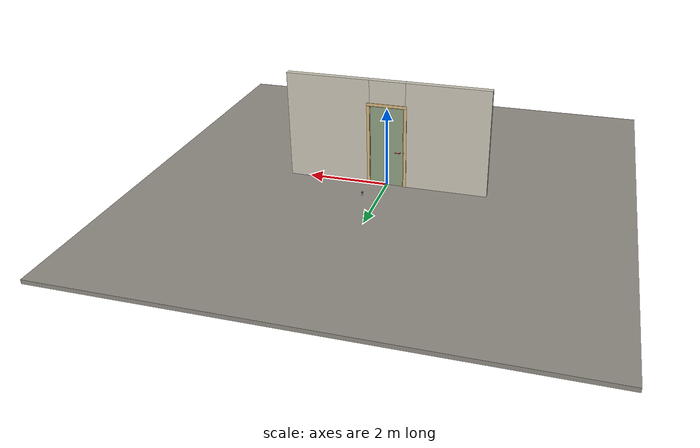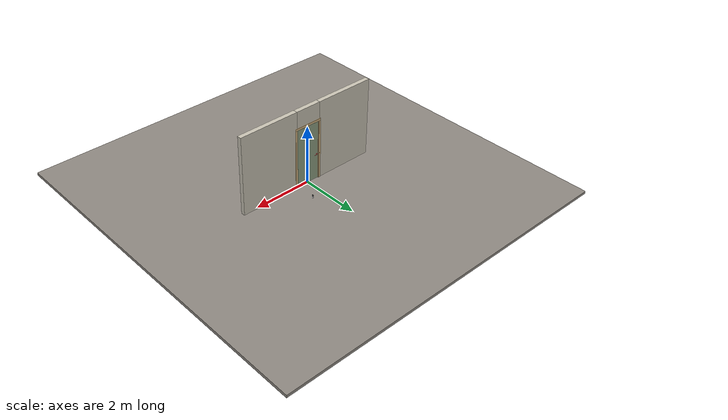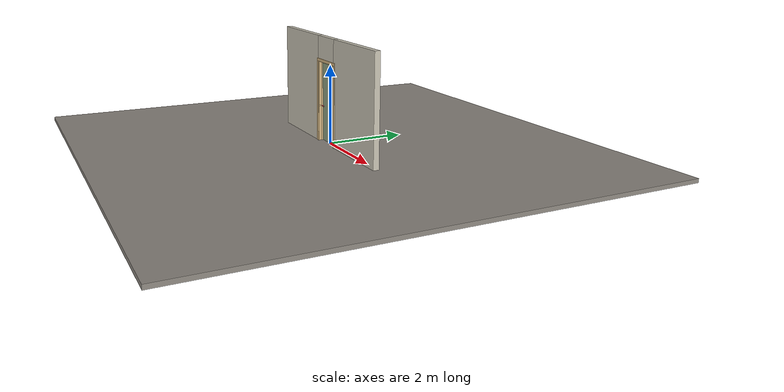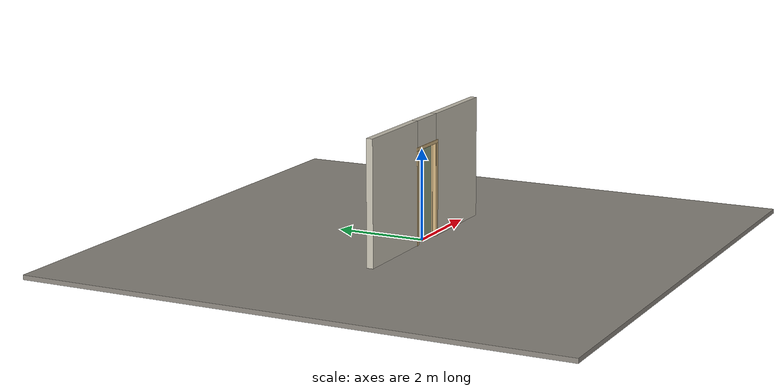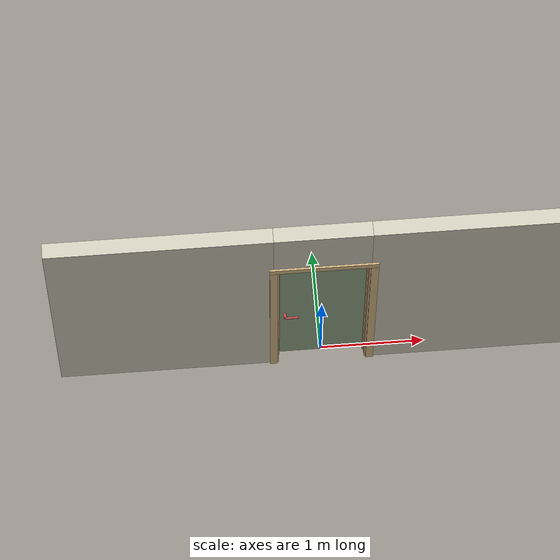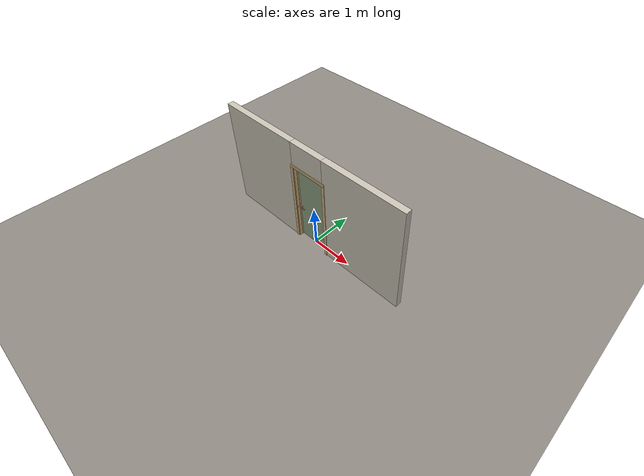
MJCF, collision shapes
<?xml version="1.0" ?>
<mujoco model="db0668_swing_single_full">
  <compiler angle="radian" meshdir="../../hardware" texturedir="../../textures" autolimits="true" inertiafromgeom="false"/>
  <option timestep="0.002" integrator="implicitfast" cone="elliptic" impratio="10" noslip_iterations="3">
    <flag multiccd="enable"/>
  </option>
  <size memory="16M"/>
  <default>
    <geom condim="4" solref="0.005 1" solimp="0.95 0.99 0.001"/>
    <joint solreflimit="0.005 1" solimplimit="0.95 0.99 0.001"/>
    <tendon solreflimit="0.005 1"/>
    <equality solref="0.002 1"/>
  </default>
  <visual>
    <headlight ambient="0.4 0.4 0.4" diffuse="0.7 0.7 0.7" specular="0.2 0.2 0.2"/>
    <quality shadowsize="4096"/>
    <map znear="0.01" zfar="60"/>
  </visual>
  <asset>
    <mesh name="hinge_96510cf394" file="hinge_96510cf394.obj"/>
    <mesh name="hinge_jamb_7fd4ca52b2" file="hinge_jamb_7fd4ca52b2.obj"/>
    <mesh name="lever_9f02b544cf" file="lever_9f02b544cf.obj"/>
    <material name="mat_floor" rgba="0.55 0.53 0.5 1" specular="0.2" shininess="0.15" reflectance="0"/>
    <material name="mat_wall" rgba="0.78 0.76 0.7 1" specular="0.2" shininess="0.1" reflectance="0"/>
    <material name="mat_leaf" rgba="0.55 0.62 0.5 1" specular="0.2" shininess="0.51" reflectance="0"/>
    <material name="mat_leaf_louver" rgba="0.468 0.527 0.425 1" specular="0.2" shininess="0.4" reflectance="0"/>
    <material name="mat_hinge" rgba="0.65 0.66 0.68 1" specular="0.74" shininess="0.5" reflectance="0.36"/>
    <material name="mat_op_nickel_satin" rgba="0.72 0.7 0.66 1" specular="0.8" shininess="0.65" reflectance="0.4"/>
    <material name="mat_trim" rgba="0.85 0.66 0.3 1" specular="0.8" shininess="0.75" reflectance="0.4"/>
    <material name="mat_bolt" rgba="0.85 0.66 0.3 1" specular="0.8" shininess="0.75" reflectance="0.4"/>
    <material name="mat_frame" rgba="0.82 0.7 0.5 1" specular="0.2" shininess="0.45" reflectance="0"/>
    <material name="mat_seal" rgba="0.1 0.1 0.1 1" specular="0.2" shininess="0.1" reflectance="0"/>
    <material name="mat_bumper_stop" rgba="0.08 0.08 0.08 1" specular="0.2" shininess="0.1" reflectance="0"/>
    <material name="mat_stop_base" rgba="0.9 0.9 0.92 1" specular="0.8" shininess="0.9" reflectance="0.4"/>
    <texture name="skybox" type="skybox" builtin="gradient" rgb1="0.6 0.7 0.85" rgb2="0.9 0.92 0.95" width="256" height="256"/>
  </asset>
  <worldbody>
    <light name="sun" pos="1.5 -2.5 4" dir="-0.3 0.5 -0.8" directional="true" diffuse="0.8 0.8 0.8" specular="0.3 0.3 0.3" castshadow="true"/>
    <light name="fill" pos="-1.5 2.5 3" dir="0.3 -0.5 -0.7" directional="true" diffuse="0.35 0.35 0.4" castshadow="false"/>
    <camera name="robot_view" pos="0 -2.590187 1.734312" xyaxes="1 0 0 0 0.26963 0.962964" fovy="52"/>
    <camera name="far_view" pos="0 2.494187 1.734312" xyaxes="-1 0 0 0 -0.26963 0.962964" fovy="52"/>
    <camera name="iso" pos="-1.932062 -2.183438 2.141063" xyaxes="0.741536 -0.670913 0 0.242917 0.268487 0.932151" fovy="46"/>
    <camera name="detail_handle" pos="-0.066 -0.8725 1.194" xyaxes="0.97561 0.219512 0 -0.070934 0.315262 0.94635" fovy="38"/>
    <geom name="floor" type="box" size="6 6 0.05" pos="0 0 -0.05" material="mat_floor" group="0" contype="1" conaffinity="1" friction="0.8 0.005 0.0001" density="2400"/>
    <geom name="wall_left" type="box" size="1.0205 0.0725 1.35" pos="-1.4795 -0.048 1.35" material="mat_wall" group="0" contype="1" conaffinity="1" friction="0.6 0.005 0.0001" density="800"/>
    <geom name="wall_right" type="box" size="1.0355 0.0725 1.35" pos="1.4645 -0.048 1.35" material="mat_wall" group="0" contype="1" conaffinity="1" friction="0.6 0.005 0.0001" density="800"/>
    <geom name="wall_header" type="box" size="0.444 0.0725 0.303" pos="-0.015 -0.048 2.397" material="mat_wall" group="0" contype="1" conaffinity="1" friction="0.6 0.005 0.0001" density="800"/>
    <geom name="hinge_0_jamb" type="mesh" mesh="hinge_jamb_7fd4ca52b2" pos="0.407 0.0245 0.259" quat="0 0 0 1" material="mat_hinge" group="1" contype="0" conaffinity="0" density="7850"/>
    <geom name="hinge_1_jamb" type="mesh" mesh="hinge_jamb_7fd4ca52b2" pos="0.407 0.0245 1.025" quat="0 0 0 1" material="mat_hinge" group="1" contype="0" conaffinity="0" density="7850"/>
    <geom name="hinge_2_jamb" type="mesh" mesh="hinge_jamb_7fd4ca52b2" pos="0.407 0.0245 1.861" quat="0 0 0 1" material="mat_hinge" group="1" contype="0" conaffinity="0" density="7850"/>
    <geom name="jamb_hinge" type="box" size="0.0095 0.0725 1.0225" pos="0.4195 -0.048 1.0225" material="mat_frame" group="0" contype="1" conaffinity="1" friction="0.6 0.005 0.0001" density="400"/>
    <geom name="strike_914_wall_n" type="box" size="0.0245 0.056325 0.0167" pos="-0.4345 -0.064175 0.914" material="mat_frame" group="0" contype="1" conaffinity="1" friction="0.6 0.005 0.0001" density="400"/>
    <geom name="strike_914_wall_p" type="box" size="0.0245 0.008 0.0167" pos="-0.4345 0.01585 0.914" material="mat_frame" group="0" contype="1" conaffinity="1" friction="0.6 0.005 0.0001" density="400"/>
    <geom name="strike_914_ramp" type="box" size="0.0245 0.01649 0.0167" pos="-0.439136 0.028673 0.914" quat="0.977148 0 0 0.212558" material="mat_frame" group="0" contype="1" conaffinity="1" friction="0.12 0.005 0.0001" density="400"/>
    <geom name="strike_914_back" type="box" size="0.01615 0.00785 0.0167" pos="-0.44285 0 0.914" material="mat_frame" group="0" contype="1" conaffinity="1" friction="0.6 0.005 0.0001" density="400"/>
    <geom name="jamb_strike_0" type="box" size="0.0245 0.0725 0.44865" pos="-0.4345 -0.048 0.44865" material="mat_frame" group="0" contype="1" conaffinity="1" friction="0.6 0.005 0.0001" density="400"/>
    <geom name="jamb_strike_1" type="box" size="0.0245 0.0725 0.55715" pos="-0.4345 -0.048 1.48785" material="mat_frame" group="0" contype="1" conaffinity="1" friction="0.6 0.005 0.0001" density="400"/>
    <geom name="jamb_head" type="box" size="0.444 0.0725 0.0095" pos="-0.015 -0.048 2.0545" material="mat_frame" group="0" contype="1" conaffinity="1" friction="0.6 0.005 0.0001" density="400"/>
    <geom name="head_stud" type="box" size="0.444 0.0725 0.015" pos="-0.015 -0.048 2.079" material="mat_wall" group="0" contype="1" conaffinity="1" friction="0.6 0.005 0.0001" density="500"/>
    <geom name="stop_hinge" type="box" size="0.0055 0.016 1.0225" pos="0.4045 -0.034 1.0225" material="mat_frame" group="0" contype="1" conaffinity="1" friction="0.6 0.005 0.0001" density="400"/>
    <geom name="stop_strike" type="box" size="0.0055 0.016 1.0225" pos="-0.4045 -0.034 1.0225" material="mat_frame" group="0" contype="1" conaffinity="1" friction="0.6 0.005 0.0001" density="400"/>
    <geom name="stop_head" type="box" size="0.41 0.016 0.0055" pos="0 -0.034 2.0395" material="mat_frame" group="0" contype="1" conaffinity="1" friction="0.6 0.005 0.0001" density="400"/>
    <geom name="seal_hinge" type="box" size="0.004 0.002 1.0225" pos="0.407 -0.0195 1.0225" material="mat_seal" group="1" contype="0" conaffinity="0" density="1100"/>
    <geom name="seal_strike" type="box" size="0.004 0.002 1.0225" pos="-0.407 -0.0195 1.0225" material="mat_seal" group="1" contype="0" conaffinity="0" density="1100"/>
    <geom name="seal_head" type="box" size="0.39 0.002 0.008" pos="0 -0.0195 2.033" material="mat_seal" group="1" contype="0" conaffinity="0" density="1100"/>
    <geom name="casing_l_n" type="box" size="0.035 0.008 1.032" pos="-0.459 -0.1285 1.0225" material="mat_frame" group="2" contype="0" conaffinity="0" density="400"/>
    <geom name="casing_r_n" type="box" size="0.035 0.008 1.032" pos="0.459 -0.1285 1.0225" material="mat_frame" group="2" contype="0" conaffinity="0" density="400"/>
    <geom name="casing_h_n" type="box" size="0.494 0.008 0.035" pos="0 -0.1285 2.094" material="mat_frame" group="2" contype="0" conaffinity="0" density="400"/>
    <geom name="casing_l_p" type="box" size="0.035 0.008 1.032" pos="-0.459 0.0325 1.0225" material="mat_frame" group="2" contype="0" conaffinity="0" density="400"/>
    <geom name="casing_r_p" type="box" size="0.035 0.008 1.032" pos="0.459 0.0325 1.0225" material="mat_frame" group="2" contype="0" conaffinity="0" density="400"/>
    <geom name="casing_h_p" type="box" size="0.494 0.008 0.035" pos="0 0.0325 2.094" material="mat_frame" group="2" contype="0" conaffinity="0" density="400"/>
    <geom name="door_stop_base" type="cylinder" size="0.022 0.003" pos="0.423 0.71555 0.003" material="mat_stop_base" group="0" contype="1" conaffinity="1" friction="0.6 0.005 0.0001" density="7850"/>
    <geom name="door_stop_post" type="cylinder" size="0.012 0.0245" pos="0.423 0.71555 0.0305" material="mat_stop_base" group="0" contype="1" conaffinity="1" friction="0.6 0.005 0.0001" density="7850"/>
    <geom name="door_stop_bumper" type="cylinder" size="0.022 0.02" pos="0.423 0.71555 0.075" material="mat_bumper_stop" group="0" contype="1" conaffinity="1" friction="0.6 0.005 0.0001" density="1100"/>
    <site name="approach_point" pos="0 -1.5 0" quat="1 0 0 0" size="0.05" rgba="0.2 0.9 0.2 0.5" group="4"/>
    <site name="goal_point" pos="0 1.5 0" quat="1 0 0 0" size="0.05" rgba="0.2 0.9 0.2 0.5" group="4"/>
    <site name="door_plane_center" pos="0 0 1.0225" quat="1 0 0 0" size="0.02" rgba="0.2 0.9 0.2 0.5" group="4"/>
    <body name="leaf" pos="0.41 0 0">
      <inertial pos="-0.405307 0.000156 1.025217" mass="38.890394" quat="0.499823 0.500377 -0.499617 0.500182" diaginertia="2.19273566 13.415975182 15.600549887"/>
      <joint name="leaf_hinge" type="hinge" axis="0 0 -1" pos="-0.003 0.0245 0" limited="true" range="0 1.570796" solreflimit="0.02 1" damping="0.210326" frictionloss="2.430777" armature="0.02"/>
      <geom name="leaf_slab" type="box" size="0.4065 0.0175 1.016" pos="-0.4095 0 1.025" material="mat_leaf" group="0" contype="1" conaffinity="1" friction="0.4 0.005 0.0001" density="1"/>
      <geom name="leaf_louver_0" type="box" size="0.3165 0.002 0.026356" pos="-0.4095 0 0.257621" quat="0.953717 0.300706 0 0" material="mat_leaf_louver" group="1" contype="0" conaffinity="0" density="1"/>
      <geom name="leaf_louver_1" type="box" size="0.3165 0.002 0.026356" pos="-0.4095 0 0.307824" quat="0.953717 0.300706 0 0" material="mat_leaf_louver" group="1" contype="0" conaffinity="0" density="1"/>
      <geom name="leaf_louver_2" type="box" size="0.3165 0.002 0.026356" pos="-0.4095 0 0.358026" quat="0.953717 0.300706 0 0" material="mat_leaf_louver" group="1" contype="0" conaffinity="0" density="1"/>
      <geom name="leaf_louver_3" type="box" size="0.3165 0.002 0.026356" pos="-0.4095 0 0.408228" quat="0.953717 0.300706 0 0" material="mat_leaf_louver" group="1" contype="0" conaffinity="0" density="1"/>
      <geom name="leaf_louver_4" type="box" size="0.3165 0.002 0.026356" pos="-0.4095 0 0.458431" quat="0.953717 0.300706 0 0" material="mat_leaf_louver" group="1" contype="0" conaffinity="0" density="1"/>
      <geom name="leaf_louver_5" type="box" size="0.3165 0.002 0.026356" pos="-0.4095 0 0.508633" quat="0.953717 0.300706 0 0" material="mat_leaf_louver" group="1" contype="0" conaffinity="0" density="1"/>
      <geom name="leaf_louver_6" type="box" size="0.3165 0.002 0.026356" pos="-0.4095 0 0.558835" quat="0.953717 0.300706 0 0" material="mat_leaf_louver" group="1" contype="0" conaffinity="0" density="1"/>
      <geom name="leaf_louver_7" type="box" size="0.3165 0.002 0.026356" pos="-0.4095 0 0.609038" quat="0.953717 0.300706 0 0" material="mat_leaf_louver" group="1" contype="0" conaffinity="0" density="1"/>
      <geom name="leaf_louver_8" type="box" size="0.3165 0.002 0.026356" pos="-0.4095 0 0.65924" quat="0.953717 0.300706 0 0" material="mat_leaf_louver" group="1" contype="0" conaffinity="0" density="1"/>
      <geom name="leaf_louver_9" type="box" size="0.3165 0.002 0.026356" pos="-0.4095 0 0.709442" quat="0.953717 0.300706 0 0" material="mat_leaf_louver" group="1" contype="0" conaffinity="0" density="1"/>
      <geom name="leaf_louver_10" type="box" size="0.3165 0.002 0.026356" pos="-0.4095 0 0.759645" quat="0.953717 0.300706 0 0" material="mat_leaf_louver" group="1" contype="0" conaffinity="0" density="1"/>
      <geom name="leaf_louver_11" type="box" size="0.3165 0.002 0.026356" pos="-0.4095 0 0.809847" quat="0.953717 0.300706 0 0" material="mat_leaf_louver" group="1" contype="0" conaffinity="0" density="1"/>
      <geom name="leaf_louver_12" type="box" size="0.3165 0.002 0.026356" pos="-0.4095 0 0.860049" quat="0.953717 0.300706 0 0" material="mat_leaf_louver" group="1" contype="0" conaffinity="0" density="1"/>
      <geom name="leaf_louver_13" type="box" size="0.3165 0.002 0.026356" pos="-0.4095 0 0.910252" quat="0.953717 0.300706 0 0" material="mat_leaf_louver" group="1" contype="0" conaffinity="0" density="1"/>
      <geom name="leaf_louver_14" type="box" size="0.3165 0.002 0.026356" pos="-0.4095 0 0.960454" quat="0.953717 0.300706 0 0" material="mat_leaf_louver" group="1" contype="0" conaffinity="0" density="1"/>
      <geom name="leaf_louver_15" type="box" size="0.3165 0.002 0.026356" pos="-0.4095 0 1.010656" quat="0.953717 0.300706 0 0" material="mat_leaf_louver" group="1" contype="0" conaffinity="0" density="1"/>
      <geom name="leaf_louver_16" type="box" size="0.3165 0.002 0.026356" pos="-0.4095 0 1.060859" quat="0.953717 0.300706 0 0" material="mat_leaf_louver" group="1" contype="0" conaffinity="0" density="1"/>
      <geom name="leaf_louver_17" type="box" size="0.3165 0.002 0.026356" pos="-0.4095 0 1.111061" quat="0.953717 0.300706 0 0" material="mat_leaf_louver" group="1" contype="0" conaffinity="0" density="1"/>
      <geom name="leaf_louver_18" type="box" size="0.3165 0.002 0.026356" pos="-0.4095 0 1.161264" quat="0.953717 0.300706 0 0" material="mat_leaf_louver" group="1" contype="0" conaffinity="0" density="1"/>
      <geom name="leaf_louver_19" type="box" size="0.3165 0.002 0.026356" pos="-0.4095 0 1.211466" quat="0.953717 0.300706 0 0" material="mat_leaf_louver" group="1" contype="0" conaffinity="0" density="1"/>
      <geom name="leaf_louver_20" type="box" size="0.3165 0.002 0.026356" pos="-0.4095 0 1.261668" quat="0.953717 0.300706 0 0" material="mat_leaf_louver" group="1" contype="0" conaffinity="0" density="1"/>
      <geom name="leaf_louver_21" type="box" size="0.3165 0.002 0.026356" pos="-0.4095 0 1.311871" quat="0.953717 0.300706 0 0" material="mat_leaf_louver" group="1" contype="0" conaffinity="0" density="1"/>
      <geom name="leaf_louver_22" type="box" size="0.3165 0.002 0.026356" pos="-0.4095 0 1.362073" quat="0.953717 0.300706 0 0" material="mat_leaf_louver" group="1" contype="0" conaffinity="0" density="1"/>
      <geom name="leaf_louver_23" type="box" size="0.3165 0.002 0.026356" pos="-0.4095 0 1.412275" quat="0.953717 0.300706 0 0" material="mat_leaf_louver" group="1" contype="0" conaffinity="0" density="1"/>
      <geom name="leaf_louver_24" type="box" size="0.3165 0.002 0.026356" pos="-0.4095 0 1.462478" quat="0.953717 0.300706 0 0" material="mat_leaf_louver" group="1" contype="0" conaffinity="0" density="1"/>
      <geom name="leaf_louver_25" type="box" size="0.3165 0.002 0.026356" pos="-0.4095 0 1.51268" quat="0.953717 0.300706 0 0" material="mat_leaf_louver" group="1" contype="0" conaffinity="0" density="1"/>
      <geom name="leaf_louver_26" type="box" size="0.3165 0.002 0.026356" pos="-0.4095 0 1.562882" quat="0.953717 0.300706 0 0" material="mat_leaf_louver" group="1" contype="0" conaffinity="0" density="1"/>
      <geom name="leaf_louver_27" type="box" size="0.3165 0.002 0.026356" pos="-0.4095 0 1.613085" quat="0.953717 0.300706 0 0" material="mat_leaf_louver" group="1" contype="0" conaffinity="0" density="1"/>
      <geom name="leaf_louver_28" type="box" size="0.3165 0.002 0.026356" pos="-0.4095 0 1.663287" quat="0.953717 0.300706 0 0" material="mat_leaf_louver" group="1" contype="0" conaffinity="0" density="1"/>
      <geom name="leaf_louver_29" type="box" size="0.3165 0.002 0.026356" pos="-0.4095 0 1.713489" quat="0.953717 0.300706 0 0" material="mat_leaf_louver" group="1" contype="0" conaffinity="0" density="1"/>
      <geom name="leaf_louver_30" type="box" size="0.3165 0.002 0.026356" pos="-0.4095 0 1.763692" quat="0.953717 0.300706 0 0" material="mat_leaf_louver" group="1" contype="0" conaffinity="0" density="1"/>
      <geom name="leaf_louver_31" type="box" size="0.3165 0.002 0.026356" pos="-0.4095 0 1.813894" quat="0.953717 0.300706 0 0" material="mat_leaf_louver" group="1" contype="0" conaffinity="0" density="1"/>
      <geom name="leaf_louver_32" type="box" size="0.3165 0.002 0.026356" pos="-0.4095 0 1.864096" quat="0.953717 0.300706 0 0" material="mat_leaf_louver" group="1" contype="0" conaffinity="0" density="1"/>
      <geom name="leaf_louver_33" type="box" size="0.3165 0.002 0.026356" pos="-0.4095 0 1.914299" quat="0.953717 0.300706 0 0" material="mat_leaf_louver" group="1" contype="0" conaffinity="0" density="1"/>
      <geom name="hinge_0" type="mesh" mesh="hinge_96510cf394" pos="-0.003 0.0245 0.259" quat="0 0 0 1" material="mat_hinge" group="1" contype="0" conaffinity="0" density="7850"/>
      <geom name="hinge_1" type="mesh" mesh="hinge_96510cf394" pos="-0.003 0.0245 1.025" quat="0 0 0 1" material="mat_hinge" group="1" contype="0" conaffinity="0" density="7850"/>
      <geom name="hinge_2" type="mesh" mesh="hinge_96510cf394" pos="-0.003 0.0245 1.861" quat="0 0 0 1" material="mat_hinge" group="1" contype="0" conaffinity="0" density="7850"/>
      <geom name="leaf_latch_bolt_faceplate" type="box" size="0.0006 0.01235 0.0267" pos="-0.8154 0 0.914" material="mat_bolt" group="1" contype="0" conaffinity="0" density="8500"/>
      <site name="leaf_edge_mid" pos="-0.816 0 1.016" quat="1 0 0 0" size="0.02" rgba="0.2 0.9 0.2 0.5" group="4"/>
      <body name="leaf_handle" pos="-0.756 0 0.914">
        <inertial pos="0.028779 0 0" mass="0.970196" quat="0.707107 0 0 -0.707107" diaginertia="0.001765339 0.003138972 0.004726252"/>
        <joint name="leaf_handle_hinge" type="hinge" axis="0 1 0" limited="true" range="0 0.96" damping="0.245623" frictionloss="0.048" stiffness="1.2" springref="-0.458333" armature="0.01"/>
        <geom name="leaf_handle_spindle" type="cylinder" size="0.006 0.0255" pos="0 0 0" quat="0.707107 -0.707107 0 0" material="mat_op_nickel_satin" group="1" contype="0" conaffinity="0" density="7850"/>
        <geom name="leaf_handle_lever_n" type="mesh" mesh="lever_9f02b544cf" pos="0 -0.0175 0" quat="0 0 -0.707107 0.707107" material="mat_op_nickel_satin" group="1" contype="0" conaffinity="0" density="3000"/>
        <geom name="leaf_handle_lever_col_n" type="capsule" size="0.0095 0.053" pos="0.0625 -0.0725 0" quat="0.707107 0 0.707107 0" material="mat_op_nickel_satin" group="3" contype="1" conaffinity="1" rgba="0.8 0.3 0.3 0.25" friction="0.7 0.01 0.0001" density="3000"/>
        <geom name="leaf_handle_hub_col_n" type="cylinder" size="0.012 0.022" pos="0 -0.0475 0" quat="0.707107 -0.707107 0 0" material="mat_op_nickel_satin" group="3" contype="1" conaffinity="1" rgba="0.8 0.3 0.3 0.25" friction="0.6 0.005 0.0001" density="3000"/>
        <geom name="leaf_handle_lever_p" type="mesh" mesh="lever_9f02b544cf" pos="0 0.0175 0" quat="0 0 0.707107 0.707107" material="mat_op_nickel_satin" group="1" contype="0" conaffinity="0" density="3000"/>
        <geom name="leaf_handle_lever_col_p" type="capsule" size="0.0095 0.053" pos="0.0625 0.0725 0" quat="0.707107 0 0.707107 0" material="mat_op_nickel_satin" group="3" contype="1" conaffinity="1" rgba="0.8 0.3 0.3 0.25" friction="0.7 0.01 0.0001" density="3000"/>
        <geom name="leaf_handle_hub_col_p" type="cylinder" size="0.012 0.022" pos="0 0.0475 0" quat="0.707107 -0.707107 0 0" material="mat_op_nickel_satin" group="3" contype="1" conaffinity="1" rgba="0.8 0.3 0.3 0.25" friction="0.6 0.005 0.0001" density="3000"/>
        <site name="leaf_handle_grip_n" pos="0.1 -0.0725 0" quat="1 0 0 0" size="0.012" rgba="0.2 0.9 0.2 0.5" group="4"/>
        <site name="leaf_handle_grip_p" pos="0.1 0.0725 0" quat="1 0 0 0" size="0.012" rgba="0.2 0.9 0.2 0.5" group="4"/>
      </body>
      <body name="leaf_latch_bolt" pos="-0.816 0 0.914">
        <inertial pos="0.00865 0 0" mass="0.041419" quat="0.92388 0.382683 0 0" diaginertia="0.000000798 0.000005598 0.000005598"/>
        <joint name="leaf_latch_bolt_slide" type="slide" axis="1 0 0" limited="true" range="0 0.0127" damping="2" frictionloss="0.3" stiffness="300" springref="-0.008333" armature="0.1"/>
        <geom name="leaf_latch_bolt_capsule" type="capsule" size="0.00635 0.015" pos="0.00865 0 0" quat="0.707107 0 -0.707107 0" material="mat_bolt" group="0" contype="1" conaffinity="1" friction="0.2 0.005 0.0001" density="8500"/>
      </body>
    </body>
  </worldbody>
  <tendon>
    <fixed name="leaf_latch_bolt_coupling" limited="true" range="0 10">
      <joint joint="leaf_latch_bolt_slide" coef="1"/>
      <joint joint="leaf_handle_hinge" coef="-0.013956"/>
    </fixed>
  </tendon>
  <sensor>
    <jointpos name="leaf_hinge_pos" joint="leaf_hinge"/>
    <jointvel name="leaf_hinge_vel" joint="leaf_hinge"/>
    <jointpos name="leaf_handle_hinge_pos" joint="leaf_handle_hinge"/>
    <jointvel name="leaf_handle_hinge_vel" joint="leaf_handle_hinge"/>
    <jointpos name="leaf_latch_bolt_slide_pos" joint="leaf_latch_bolt_slide"/>
    <jointvel name="leaf_latch_bolt_slide_vel" joint="leaf_latch_bolt_slide"/>
  </sensor>
</mujoco>
